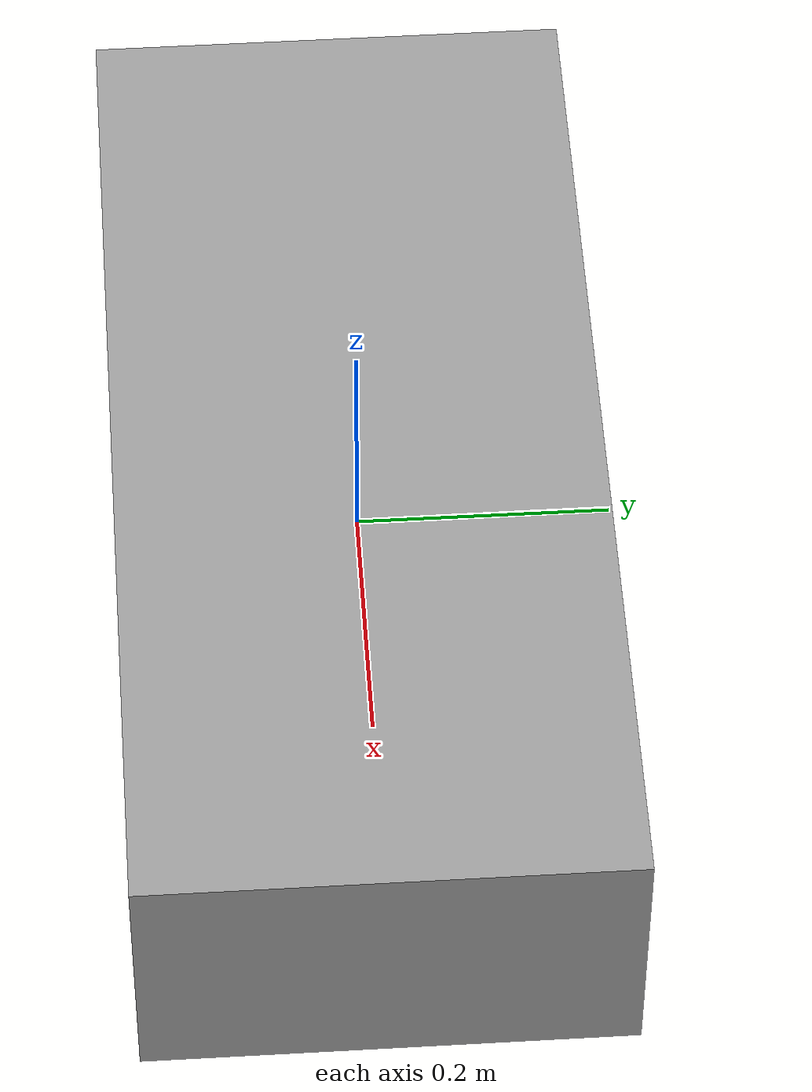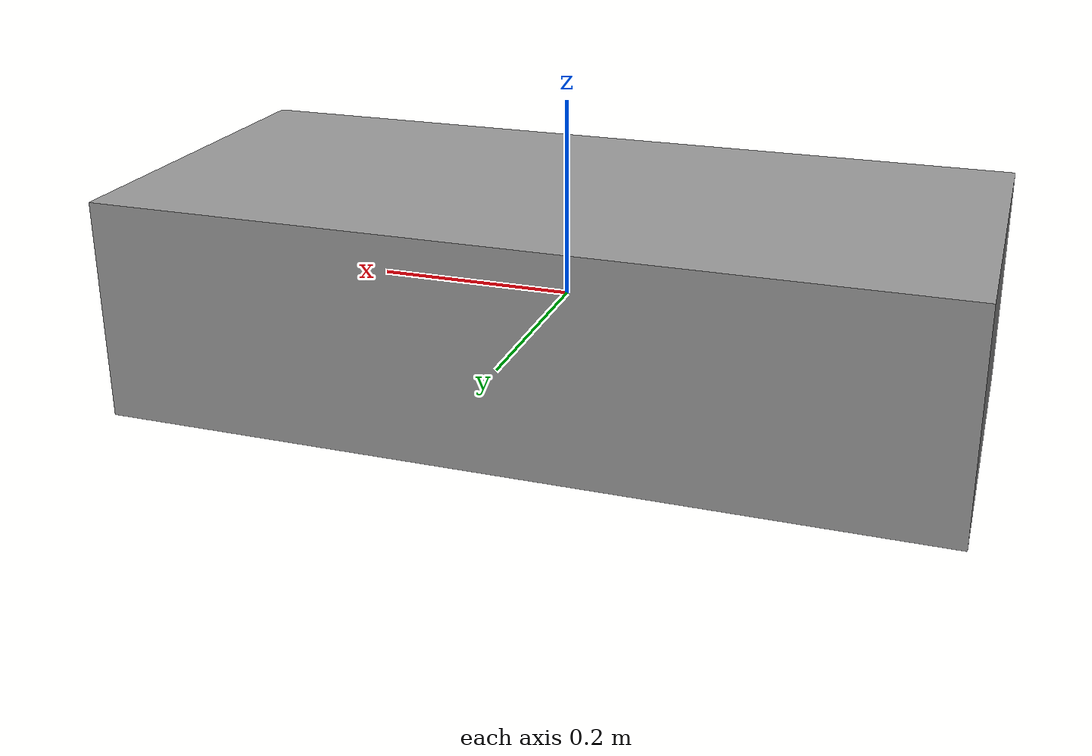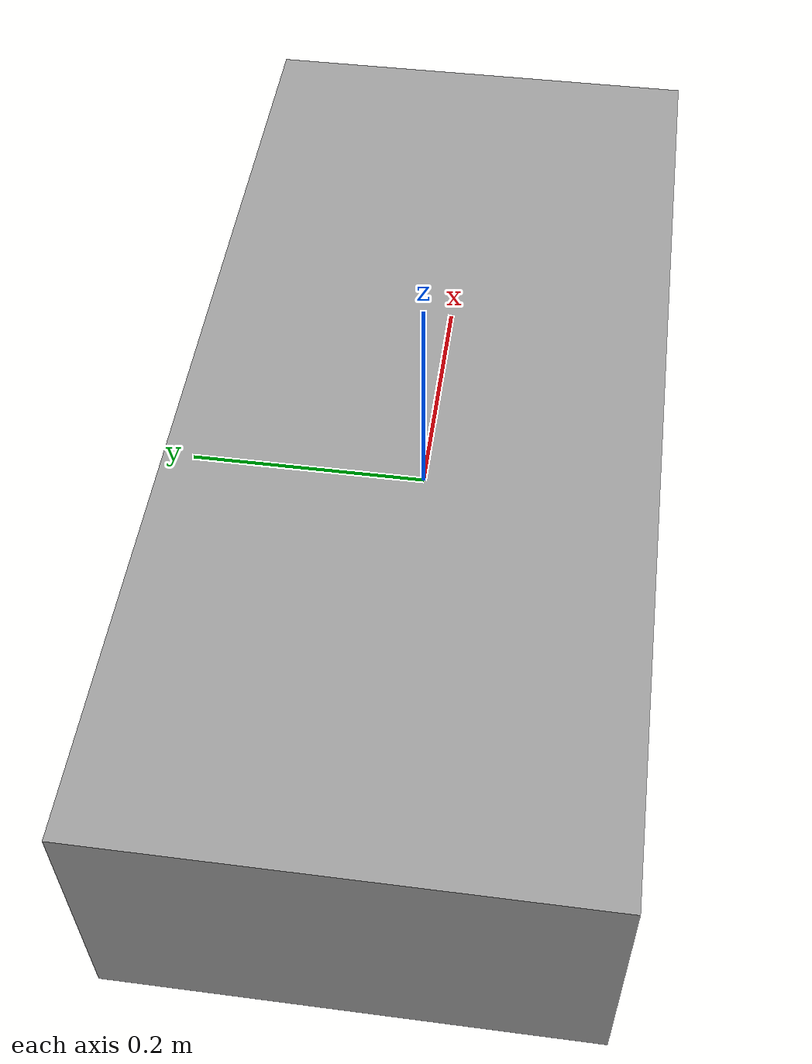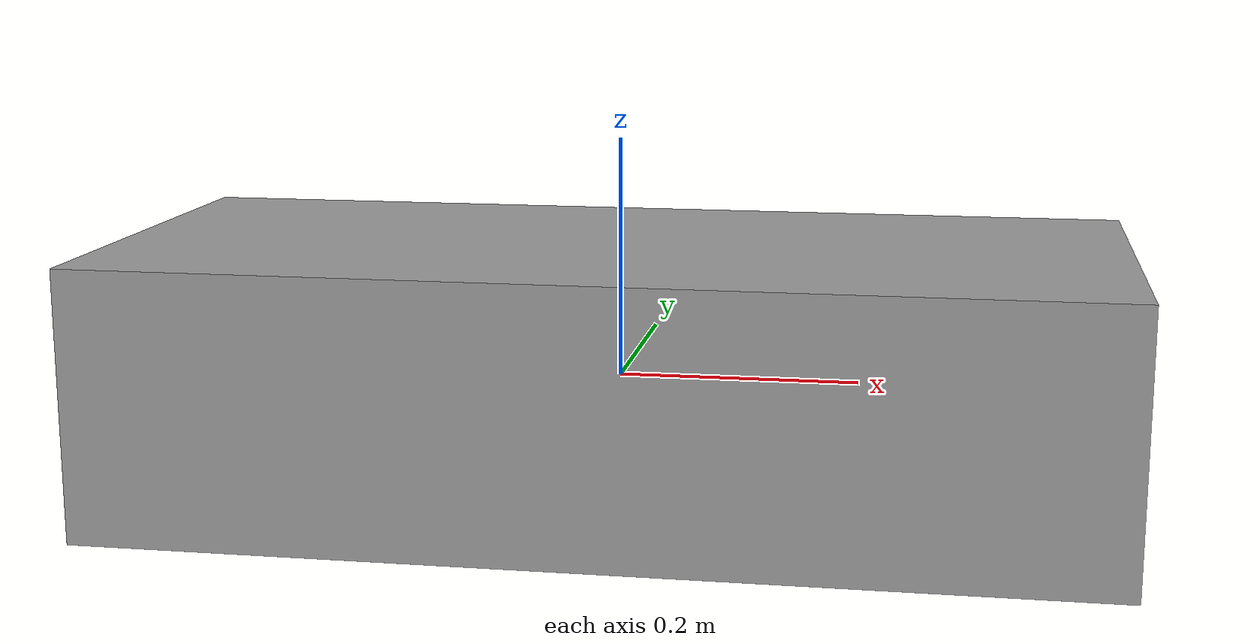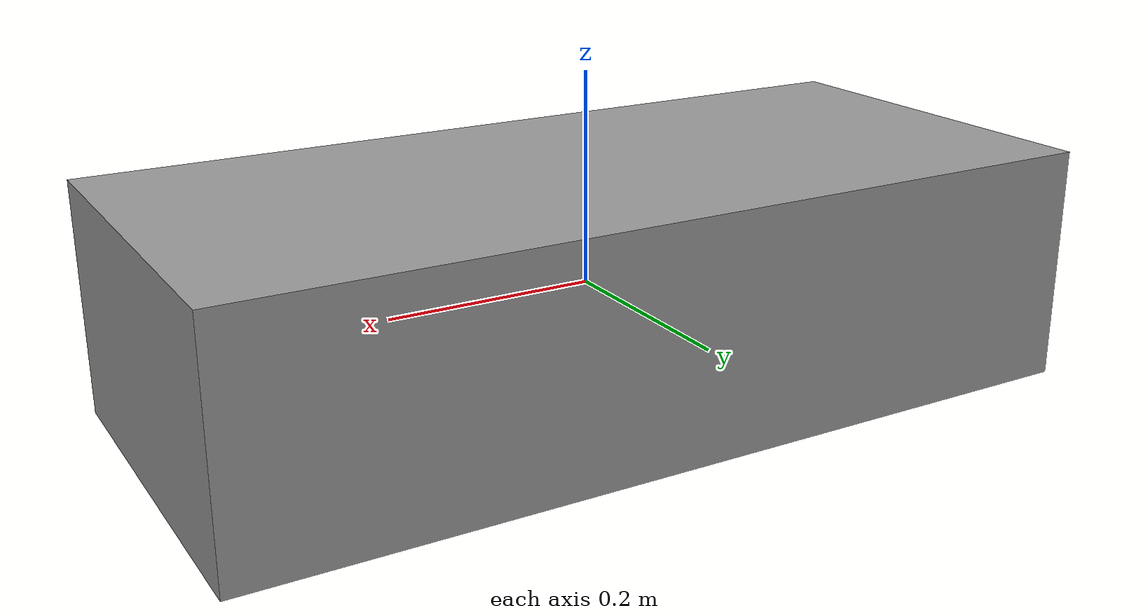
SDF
<?xml version='1.0'?>
<sdf version='1.6'>
  <model name='barrier_white'>
    <link name='link_0'>
      <inertial>
        <mass>1</mass>
        <inertia>
          <ixx>0.166667</ixx>
          <ixy>0</ixy>
          <ixz>0</ixz>
          <iyy>0.166667</iyy>
          <iyz>0</iyz>
          <izz>0.166667</izz>
        </inertia>
        <pose frame=''>0 0 0 0 -0 0</pose>
      </inertial>
      <pose frame=''>0 0 0 0 -0 0</pose>
      <gravity>1</gravity>
      <self_collide>0</self_collide>
      <kinematic>0</kinematic>
      <enable_wind>0</enable_wind>
      <visual name='visual'>
        <pose frame=''>0 0 0 0 -0 0</pose>
        <geometry>
          <box>
            <size>0.8382 0.381 0.225</size>
          </box>
        </geometry>
        <material>
          <lighting>1</lighting>
          <script>
            <uri>file://media/materials/scripts/gazebo.material</uri>
            <name>Gazebo/Grey</name>
          </script>
          <shader type='vertex'>
            <normal_map>__default__</normal_map>
          </shader>
          <ambient>1 1 1 1</ambient>
          <diffuse>0.7 0.7 0.7 1</diffuse>
          <specular>0.01 0.01 0.01 1</specular>
          <emissive>0 0 0 1</emissive>
        </material>
        <transparency>0</transparency>
        <cast_shadows>1</cast_shadows>
      </visual>
      <collision name='collision'>
        <laser_retro>0</laser_retro>
        <max_contacts>10</max_contacts>
        <pose frame=''>0 0 0 0 -0 0</pose>
        <geometry>
          <box>
            <size>0.8382 0.381 0.225</size>
          </box>
        </geometry>
        <surface>
          <friction>
            <ode>
              <mu>1</mu>
              <mu2>1</mu2>
              <fdir1>0 0 0</fdir1>
              <slip1>0</slip1>
              <slip2>0</slip2>
            </ode>
            <torsional>
              <coefficient>1</coefficient>
              <patch_radius>0</patch_radius>
              <surface_radius>0</surface_radius>
              <use_patch_radius>1</use_patch_radius>
              <ode>
                <slip>0</slip>
              </ode>
            </torsional>
          </friction>
          <bounce>
            <restitution_coefficient>0</restitution_coefficient>
            <threshold>1e+06</threshold>
          </bounce>
          <contact>
            <collide_without_contact>0</collide_without_contact>
            <collide_without_contact_bitmask>1</collide_without_contact_bitmask>
            <collide_bitmask>1</collide_bitmask>
            <ode>
              <soft_cfm>0</soft_cfm>
              <soft_erp>0.2</soft_erp>
              <kp>1e+13</kp>
              <kd>1</kd>
              <max_vel>0.01</max_vel>
              <min_depth>0</min_depth>
            </ode>
            <bullet>
              <split_impulse>1</split_impulse>
              <split_impulse_penetration_threshold>-0.01</split_impulse_penetration_threshold>
              <soft_cfm>0</soft_cfm>
              <soft_erp>0.2</soft_erp>
              <kp>1e+13</kp>
              <kd>1</kd>
            </bullet>
          </contact>
        </surface>
      </collision>
    </link>
    <link name='link_2'>
      <inertial>
        <mass>1</mass>
        <inertia>
          <ixx>0.145833</ixx>
          <ixy>0</ixy>
          <ixz>0</ixz>
          <iyy>0.145833</iyy>
          <iyz>0</iyz>
          <izz>0.125</izz>
        </inertia>
        <pose frame=''>0 0 0 0 -0 0</pose>
      </inertial>
      <pose frame=''>0.4191 0 0 0 -0 0</pose>
      <gravity>1</gravity>
      <self_collide>0</self_collide>
      <kinematic>0</kinematic>
      <enable_wind>0</enable_wind>
      <visual name='visual'>
        <pose frame=''>0 0 0 0 -0 0</pose>
        <geometry>
          <cylinder>
            <radius>0.1905</radius>
            <length>0.225</length>
          </cylinder>
        </geometry>
        <material>
          <lighting>1</lighting>
          <script>
            <uri>file://media/materials/scripts/gazebo.material</uri>
            <name>Gazebo/Grey</name>
          </script>
          <shader type='vertex'>
            <normal_map>__default__</normal_map>
          </shader>
          <ambient>1 1 255 1</ambient>
          <diffuse>0.7 0.7 0.7 1</diffuse>
          <specular>0.01 0.01 0.01 1</specular>
          <emissive>0 0 0 1</emissive>
        </material>
        <transparency>0</transparency>
        <cast_shadows>1</cast_shadows>
      </visual>
    </link>
    <link name='link_2_clone'>
      <inertial>
        <mass>1</mass>
        <inertia>
          <ixx>0.145833</ixx>
          <ixy>0</ixy>
          <ixz>0</ixz>
          <iyy>0.145833</iyy>
          <iyz>0</iyz>
          <izz>0.125</izz>
        </inertia>
        <pose frame=''>0 0 0 0 -0 0</pose>
      </inertial>
      <pose frame=''>-0.4191 0 0 0 -0 0</pose>
      <gravity>1</gravity>
      <self_collide>0</self_collide>
      <kinematic>0</kinematic>
      <enable_wind>0</enable_wind>
      <visual name='visual'>
        <pose frame=''>0 0 0 0 -0 0</pose>
        <geometry>
          <cylinder>
            <radius>0.1905</radius>
            <length>0.225</length>
          </cylinder>
        </geometry>
        <material>
          <lighting>1</lighting>
          <script>
            <uri>file://media/materials/scripts/gazebo.material</uri>
            <name>Gazebo/Grey</name>
          </script>
          <shader type='vertex'>
            <normal_map>__default__</normal_map>
          </shader>
          <ambient>1 1 255 1</ambient>
          <diffuse>0.7 0.7 0.7 1</diffuse>
          <specular>0.01 0.01 0.01 1</specular>
          <emissive>0 0 0 1</emissive>
        </material>
        <transparency>0</transparency>
        <cast_shadows>1</cast_shadows>
      </visual>
    </link>
    <joint name='link_0_JOINT_0' type='fixed'>
      <parent>link_0</parent>
      <child>link_2_clone</child>
      <pose frame=''>0 0 0 0 -0 0</pose>
      <physics>
        <ode>
          <limit>
            <cfm>0</cfm>
            <erp>0.2</erp>
          </limit>
          <suspension>
            <cfm>0</cfm>
            <erp>0.2</erp>
          </suspension>
        </ode>
      </physics>
    </joint>
    <joint name='link_0_JOINT_1' type='revolute'>
      <parent>link_0</parent>
      <child>link_2</child>
      <pose frame=''>0 0 0 0 -0 0</pose>
      <axis>
        <xyz>1 0 0</xyz>
        <use_parent_model_frame>0</use_parent_model_frame>
        <limit>
          <lower>-1.79769e+308</lower>
          <upper>1.79769e+308</upper>
          <effort>-1</effort>
          <velocity>-1</velocity>
        </limit>
        <dynamics>
          <spring_reference>0</spring_reference>
          <spring_stiffness>0</spring_stiffness>
          <damping>0</damping>
        </dynamics>
      </axis>
      <physics>
        <ode>
          <limit>
            <cfm>0</cfm>
            <erp>0.2</erp>
          </limit>
          <suspension>
            <cfm>0</cfm>
            <erp>0.2</erp>
          </suspension>
        </ode>
      </physics>
    </joint>
    <static>0</static>
    <allow_auto_disable>1</allow_auto_disable>
  </model>
</sdf>
